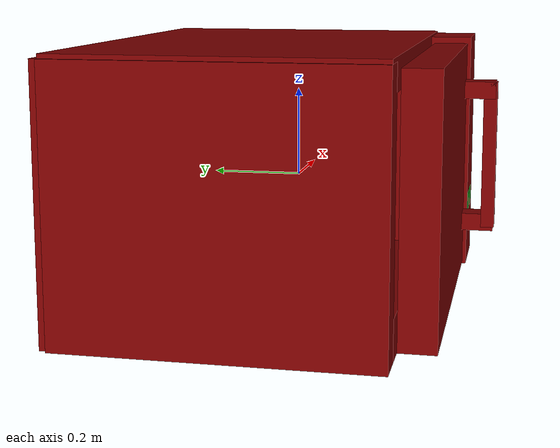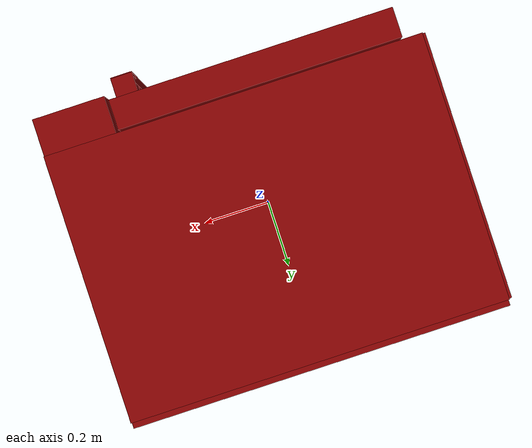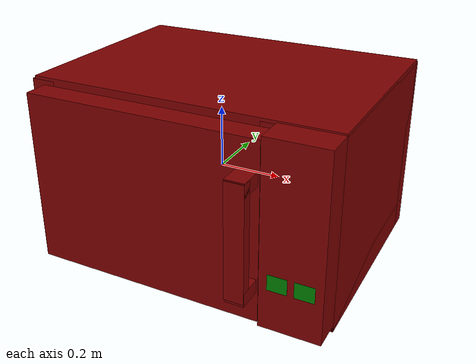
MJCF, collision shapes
<?xml version='1.0' encoding='UTF-8'?>
<mujoco model="microwave2">
  <compiler angle="radian"/>
  <asset>
    <texture file="visuals/material_0.png" name="tex-microwave2" type="2d"/>
    <texture type="2d" name="image0" file="visuals/image0.png"/>
    <material name="microwave2" reflectance="0.5" texrepeat="1 1" texture="tex-microwave2" texuniform="false"/>
    <material name="Oven" texture="image0" specular="0.5" shininess="0.25"/>
    <mesh file="visuals/microwave2_0.obj" name="microwave2_0_vis" scale="1 1 1"/>
    <mesh file="visuals/microwave2_door_0.obj" name="microwave2_door_0_vis" scale="1 1 1"/>
  </asset>
  <default>
    <default class="visual">
      <geom conaffinity="0" contype="0" group="1" type="mesh"/>
    </default>
    <default class="collision">
      <geom group="0" rgba="0.5 0 0 0.5"/>
    </default>
    <default class="region">
      <geom group="1" conaffinity="0" contype="0" rgba="0 1 0 0"/>
    </default>
  </default>
  <worldbody>
    <body>
      <body name="object">
        <geom solimp="0.998 0.998 0.001" solref="0.001 1" density="100" friction="0.95 0.3 0.1" type="mesh" mesh="microwave2_0_vis" material="Oven" class="visual"/>
        <!-- Back Wall -->
        <geom class="collision" type="box" pos="0 0.4125 0" size="0.5 0.032 0.3"/>
        <!-- Floor -->
        <geom class="collision" type="box" pos="0 0.075 -0.255" size="0.5 0.352 0.045"/>
        <!-- Top -->
        <geom class="collision" type="box" pos="0 0.075 0.275" size="0.5 0.352 0.035"/>
        <!-- Left Wall-->
        <geom class="collision" type="box" pos="-0.47 0.075 0" size="0.04 0.352 0.3"/>
        <!-- Right Wall-->
        <geom class="collision" type="box" pos="0.38 0.075 0" size="0.12 0.352 0.3"/>
        <!-- Keypad -->
        <geom class="collision" type="box" pos="0.405 -0.325 0.015" size="0.095 0.0505 0.29"/>
        <!-- start/stop buttons -->
        <geom class="collision" type="box" pos="0.445 -0.325 -0.12" size="0.03 0.051 0.025" name="start_button" rgba="0.0 0.5 0 0.5"/>
        <geom class="collision" type="box" pos="0.365 -0.325 -0.12" size="0.03 0.051 0.025" name="stop_button" rgba="0.0 0.5 0 0.5"/>
        <geom class="collision" type="cylinder" pos="-0.09 0.05 -0.21" size="0.25 0.005" rgba="0 1 0 0.5" name="tray"/>
        <body name="door">
          <joint axis="0 0 1" limited="true" name="microjoint" range="-1.57 0" damping="2" frictionloss="2" armature=".01" pos="-0.45 -0.367 0" ref="0"/>
          <geom solimp="0.998 0.998 0.001" solref="0.001 1" density="100" friction="0.95 0.3 0.1" type="mesh" mesh="microwave2_door_0_vis" material="Oven" class="visual"/>
          <!-- Door -->
          <geom class="collision" type="box" pos="-0.075 -0.327 0.01" size="0.38 0.04 0.28" name="door_main"/>
          <!-- Handle Top -->
          <geom class="collision" type="box" pos="0.27 -0.405 0.18" size="0.03 0.038 0.021"/>
          <!-- Handle Bottom -->
          <geom class="collision" type="box" pos="0.27 -0.405 -0.15" size="0.03 0.038 0.021"/>
          <!-- Handle Main -->
          <geom class="collision" type="box" pos="0.27 -0.43 0.018" size="0.03 0.016 0.18" name="door_handle_main"/>
        </body>
        <!-- exterior bounding box points -->
        <geom class="region" name="reg_main" type="box" pos="0.0 0.04250000000000001 0.01100000000000001" size="0.51 0.4125 0.294"/>
        <!-- interior bounding box points -->
        <geom class="region" name="reg_int" type="box" pos="-0.08499999999999999 0.04999999999999999 0.01999999999999999" size="0.345 0.32 0.22"/>
      <geom class="region" name="reg_tray" type="cylinder" pos="-0.09 0.05 0.0175" size="0.25 0.22149999999999997"/></body>
    </body>
  </worldbody>
</mujoco>
